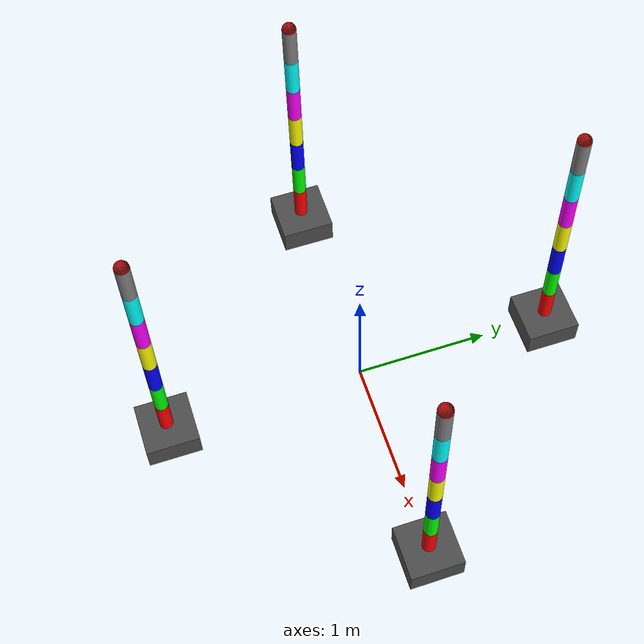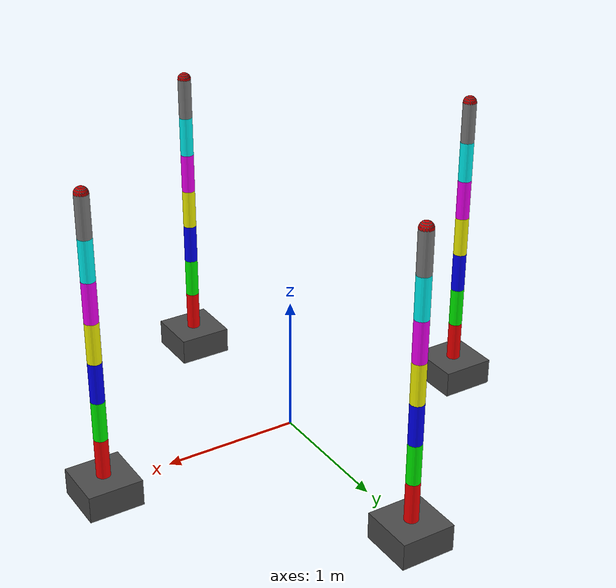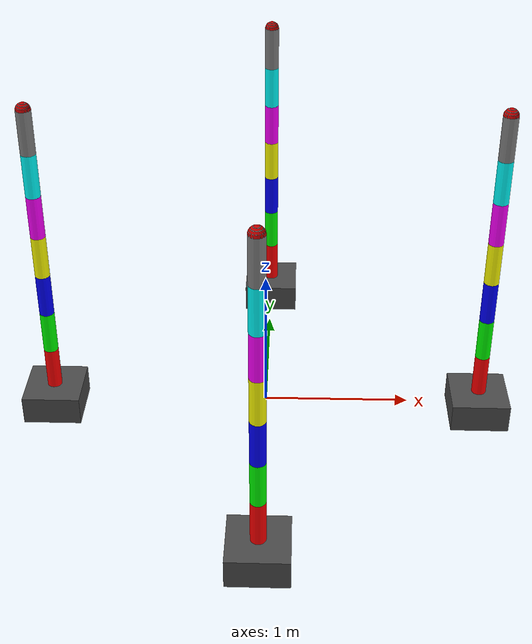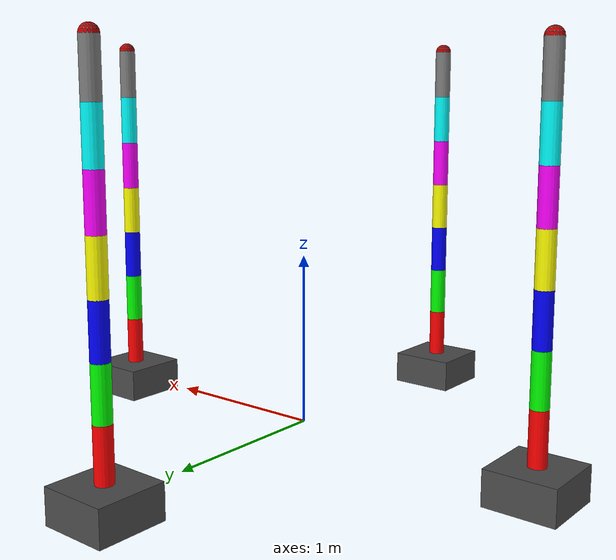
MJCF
<mujoco model="four_franka_pandas">
    <option timestep="0.001" integrator="RK4" gravity="0 0 0"/>

    <default>
        <joint damping="0.01" stiffness="0" limited="true"/>
        <geom rgba="0.8 0.6 0.4 1" condim="4" friction="1 0.5 0.5"/>
    </default>

    <worldbody>
        <!-- Base for first arm (Front) -->
        <body name="base1" pos="1.5 0 0" euler="0 0 180">
            <geom type="box" size="0.2 0.2 0.1" rgba="0.3 0.3 0.3 1"/>
            <!-- First Arm -->
            <body name="link1_1" pos="0 0 0.1">
                <joint name="joint1_1" type="hinge" axis="0 0 1" range="-180 180"/>
                <geom type="capsule" fromto="0 0 0 0 0 0.3" size="0.05" rgba="1 0 0 1"/>
                <body name="link1_2" pos="0 0 0.3">
                    <joint name="joint1_2" type="hinge" axis="0 1 0" range="-90 90"/>
                    <geom type="capsule" fromto="0 0 0 0 0 0.3" size="0.05" rgba="0 1 0 1"/>
                    <body name="link1_3" pos="0 0 0.3">
                        <joint name="joint1_3" type="hinge" axis="0 0 1" range="-180 180"/>
                        <geom type="capsule" fromto="0 0 0 0 0 0.3" size="0.05" rgba="0 0 1 1"/>
                        <body name="link1_4" pos="0 0 0.3">
                            <joint name="joint1_4" type="hinge" axis="0 1 0" range="-90 90"/>
                            <geom type="capsule" fromto="0 0 0 0 0 0.3" size="0.05" rgba="1 1 0 1"/>
                            <body name="link1_5" pos="0 0 0.3">
                                <joint name="joint1_5" type="hinge" axis="0 0 1" range="-180 180"/>
                                <geom type="capsule" fromto="0 0 0 0 0 0.3" size="0.05" rgba="1 0 1 1"/>
                                <body name="link1_6" pos="0 0 0.3">
                                    <joint name="joint1_6" type="hinge" axis="0 1 0" range="-90 90"/>
                                    <geom type="capsule" fromto="0 0 0 0 0 0.3" size="0.05" rgba="0 1 1 1"/>
                                    <body name="link1_7" pos="0 0 0.3">
                                        <joint name="joint1_7" type="hinge" axis="0 0 1" range="-180 180"/>
                                        <geom type="capsule" fromto="0 0 0 0 0 0.3" size="0.05" rgba="0.5 0.5 0.5 1"/>
                                        <body name="end_effector1" pos="0 0 0.3">
                                            <geom type="sphere" size="0.05" rgba="0.8 0 0 1"/>
                                        </body>
                                    </body>
                                </body>
                            </body>
                        </body>
                    </body>
                </body>
            </body>
        </body>

        <!-- Base for second arm (Right) -->
        <body name="base2" pos="0 1.5 0" euler="0 0 -90">
            <geom type="box" size="0.2 0.2 0.1" rgba="0.3 0.3 0.3 1"/>
            <!-- First Arm -->
            <body name="link2_1" pos="0 0 0.1">
                <joint name="joint2_1" type="hinge" axis="0 0 1" range="-180 180"/>
                <geom type="capsule" fromto="0 0 0 0 0 0.3" size="0.05" rgba="1 0 0 1"/>
                <body name="link2_2" pos="0 0 0.3">
                    <joint name="joint2_2" type="hinge" axis="0 1 0" range="-90 90"/>
                    <geom type="capsule" fromto="0 0 0 0 0 0.3" size="0.05" rgba="0 1 0 1"/>
                    <body name="link2_3" pos="0 0 0.3">
                        <joint name="joint2_3" type="hinge" axis="0 0 1" range="-180 180"/>
                        <geom type="capsule" fromto="0 0 0 0 0 0.3" size="0.05" rgba="0 0 1 1"/>
                        <body name="link2_4" pos="0 0 0.3">
                            <joint name="joint2_4" type="hinge" axis="0 1 0" range="-90 90"/>
                            <geom type="capsule" fromto="0 0 0 0 0 0.3" size="0.05" rgba="1 1 0 1"/>
                            <body name="link2_5" pos="0 0 0.3">
                                <joint name="joint2_5" type="hinge" axis="0 0 1" range="-180 180"/>
                                <geom type="capsule" fromto="0 0 0 0 0 0.3" size="0.05" rgba="1 0 1 1"/>
                                <body name="link2_6" pos="0 0 0.3">
                                    <joint name="joint2_6" type="hinge" axis="0 1 0" range="-90 90"/>
                                    <geom type="capsule" fromto="0 0 0 0 0 0.3" size="0.05" rgba="0 1 1 1"/>
                                    <body name="link2_7" pos="0 0 0.3">
                                        <joint name="joint2_7" type="hinge" axis="0 0 1" range="-180 180"/>
                                        <geom type="capsule" fromto="0 0 0 0 0 0.3" size="0.05" rgba="0.5 0.5 0.5 1"/>
                                        <body name="end_effector2" pos="0 0 0.3">
                                            <geom type="sphere" size="0.05" rgba="0.8 0 0 1"/>
                                        </body>
                                    </body>
                                </body>
                            </body>
                        </body>
                    </body>
                </body>
            </body>
        </body>

         <body name="base3" pos="-1.5 0 0" euler="0 0 0">
            <geom type="box" size="0.2 0.2 0.1" rgba="0.3 0.3 0.3 1"/>
            <!-- First Arm -->
            <body name="link3_1" pos="0 0 0.1">
                <joint name="joint3_1" type="hinge" axis="0 0 1" range="-180 180"/>
                <geom type="capsule" fromto="0 0 0 0 0 0.3" size="0.05" rgba="1 0 0 1"/>
                <body name="link3_2" pos="0 0 0.3">
                    <joint name="joint3_2" type="hinge" axis="0 1 0" range="-90 90"/>
                    <geom type="capsule" fromto="0 0 0 0 0 0.3" size="0.05" rgba="0 1 0 1"/>
                    <body name="link3_3" pos="0 0 0.3">
                        <joint name="joint3_3" type="hinge" axis="0 0 1" range="-180 180"/>
                        <geom type="capsule" fromto="0 0 0 0 0 0.3" size="0.05" rgba="0 0 1 1"/>
                        <body name="link3_4" pos="0 0 0.3">
                            <joint name="joint3_4" type="hinge" axis="0 1 0" range="-90 90"/>
                            <geom type="capsule" fromto="0 0 0 0 0 0.3" size="0.05" rgba="1 1 0 1"/>
                            <body name="link3_5" pos="0 0 0.3">
                                <joint name="joint3_5" type="hinge" axis="0 0 1" range="-180 180"/>
                                <geom type="capsule" fromto="0 0 0 0 0 0.3" size="0.05" rgba="1 0 1 1"/>
                                <body name="link3_6" pos="0 0 0.3">
                                    <joint name="joint3_6" type="hinge" axis="0 1 0" range="-90 90"/>
                                    <geom type="capsule" fromto="0 0 0 0 0 0.3" size="0.05" rgba="0 1 1 1"/>
                                    <body name="link3_7" pos="0 0 0.3">
                                        <joint name="joint3_7" type="hinge" axis="0 0 1" range="-180 180"/>
                                        <geom type="capsule" fromto="0 0 0 0 0 0.3" size="0.05" rgba="0.5 0.5 0.5 1"/>
                                        <body name="end_effector3" pos="0 0 0.3">
                                            <geom type="sphere" size="0.05" rgba="0.8 0 0 1"/>
                                        </body>
                                    </body>
                                </body>
                            </body>
                        </body>
                    </body>
                </body>
            </body>
        </body>

         <body name="base4" pos="0 -1.5 0" euler="0 0 90">
            <geom type="box" size="0.2 0.2 0.1" rgba="0.3 0.3 0.3 1"/>
            <!-- First Arm -->
            <body name="link4_1" pos="0 0 0.1">
                <joint name="joint4_1" type="hinge" axis="0 0 1" range="-180 180"/>
                <geom type="capsule" fromto="0 0 0 0 0 0.3" size="0.05" rgba="1 0 0 1"/>
                <body name="link4_2" pos="0 0 0.3">
                    <joint name="joint4_2" type="hinge" axis="0 1 0" range="-90 90"/>
                    <geom type="capsule" fromto="0 0 0 0 0 0.3" size="0.05" rgba="0 1 0 1"/>
                    <body name="link4_3" pos="0 0 0.3">
                        <joint name="joint4_3" type="hinge" axis="0 0 1" range="-180 180"/>
                        <geom type="capsule" fromto="0 0 0 0 0 0.3" size="0.05" rgba="0 0 1 1"/>
                        <body name="link4_4" pos="0 0 0.3">
                            <joint name="joint4_4" type="hinge" axis="0 1 0" range="-90 90"/>
                            <geom type="capsule" fromto="0 0 0 0 0 0.3" size="0.05" rgba="1 1 0 1"/>
                            <body name="link4_5" pos="0 0 0.3">
                                <joint name="joint4_5" type="hinge" axis="0 0 1" range="-180 180"/>
                                <geom type="capsule" fromto="0 0 0 0 0 0.3" size="0.05" rgba="1 0 1 1"/>
                                <body name="link4_6" pos="0 0 0.3">
                                    <joint name="joint4_6" type="hinge" axis="0 1 0" range="-90 90"/>
                                    <geom type="capsule" fromto="0 0 0 0 0 0.3" size="0.05" rgba="0 1 1 1"/>
                                    <body name="link4_7" pos="0 0 0.3">
                                        <joint name="joint4_7" type="hinge" axis="0 0 1" range="-180 180"/>
                                        <geom type="capsule" fromto="0 0 0 0 0 0.3" size="0.05" rgba="0.5 0.5 0.5 1"/>
                                        <body name="end_effector4" pos="0 0 0.3">
                                            <geom type="sphere" size="0.05" rgba="0.8 0 0 1"/>
                                        </body>
                                    </body>
                                </body>
                            </body>
                        </body>
                    </body>
                </body>
            </body>
        </body>

        <!-- Repeat similarly for third and fourth arms -->
    </worldbody>

    <actuator>
        <!-- Add actuators for all arms -->
        <motor name="motor1_1" joint="joint1_1" ctrlrange="-1 1" ctrllimited="true" gear="1"/>
        <motor name="motor1_2" joint="joint1_2" ctrlrange="-1 1" ctrllimited="true" gear="1"/>
        <motor name="motor1_3" joint="joint1_3" ctrlrange="-1 1" ctrllimited="true" gear="1"/>
        <motor name="motor1_4" joint="joint1_4" ctrlrange="-1 1" ctrllimited="true" gear="1"/>
        <motor name="motor1_5" joint="joint1_5" ctrlrange="-1 1" ctrllimited="true" gear="1"/>
        <motor name="motor1_6" joint="joint1_6" ctrlrange="-1 1" ctrllimited="true" gear="1"/>
        <motor name="motor1_7" joint="joint1_7" ctrlrange="-1 1" ctrllimited="true" gear="1"/>
        <motor name="motor2_1" joint="joint2_1" ctrlrange="-1 1" ctrllimited="true" gear="1"/>
        <motor name="motor2_2" joint="joint2_2" ctrlrange="-1 1" ctrllimited="true" gear="1"/>
        <motor name="motor2_3" joint="joint2_3" ctrlrange="-1 1" ctrllimited="true" gear="1"/>
        <motor name="motor2_4" joint="joint2_4" ctrlrange="-1 1" ctrllimited="true" gear="1"/>
        <motor name="motor2_5" joint="joint2_5" ctrlrange="-1 1" ctrllimited="true" gear="1"/>
        <motor name="motor2_6" joint="joint2_6" ctrlrange="-1 1" ctrllimited="true" gear="1"/>
        <motor name="motor2_7" joint="joint2_7" ctrlrange="-1 1" ctrllimited="true" gear="1"/>
        <motor name="motor3_1" joint="joint3_1" ctrlrange="-1 1" ctrllimited="true" gear="1"/>
        <motor name="motor3_2" joint="joint3_2" ctrlrange="-1 1" ctrllimited="true" gear="1"/>
        <motor name="motor3_3" joint="joint3_3" ctrlrange="-1 1" ctrllimited="true" gear="1"/>
        <motor name="motor3_4" joint="joint3_4" ctrlrange="-1 1" ctrllimited="true" gear="1"/>
        <motor name="motor3_5" joint="joint3_5" ctrlrange="-1 1" ctrllimited="true" gear="1"/>
        <motor name="motor3_6" joint="joint3_6" ctrlrange="-1 1" ctrllimited="true" gear="1"/>
        <motor name="motor3_7" joint="joint3_7" ctrlrange="-1 1" ctrllimited="true" gear="1"/>
        <motor name="motor4_1" joint="joint4_1" ctrlrange="-1 1" ctrllimited="true" gear="1"/>
        <motor name="motor4_2" joint="joint4_2" ctrlrange="-1 1" ctrllimited="true" gear="1"/>
        <motor name="motor4_3" joint="joint4_3" ctrlrange="-1 1" ctrllimited="true" gear="1"/>
        <motor name="motor4_4" joint="joint4_4" ctrlrange="-1 1" ctrllimited="true" gear="1"/>
        <motor name="motor4_5" joint="joint4_5" ctrlrange="-1 1" ctrllimited="true" gear="1"/>
        <motor name="motor4_6" joint="joint4_6" ctrlrange="-1 1" ctrllimited="true" gear="1"/>
        <motor name="motor4_7" joint="joint4_7" ctrlrange="-1 1" ctrllimited="true" gear="1"/>

        <!-- Add the rest for each joint -->
    </actuator>

    <sensor>
        <jointpos joint="joint1_1"/>
        <jointpos joint="joint1_2"/>
        <jointpos joint="joint1_3"/>
        <jointpos joint="joint1_4"/>
        <jointpos joint="joint1_5"/>
        <jointpos joint="joint1_6"/>
        <jointpos joint="joint1_7"/>
        <jointvel joint="joint1_1"/>
        <jointvel joint="joint1_2"/>
        <jointvel joint="joint1_3"/>
        <jointvel joint="joint1_4"/>
        <jointvel joint="joint1_5"/>
        <jointvel joint="joint1_6"/>
        <jointvel joint="joint1_7"/>
        <jointpos joint="joint2_1"/>
        <jointpos joint="joint2_2"/>
        <jointpos joint="joint2_3"/>
        <jointpos joint="joint2_4"/>
        <jointpos joint="joint2_5"/>
        <jointpos joint="joint2_6"/>
        <jointpos joint="joint2_7"/>
        <jointvel joint="joint2_1"/>
        <jointvel joint="joint2_2"/>
        <jointvel joint="joint2_3"/>
        <jointvel joint="joint2_4"/>
        <jointvel joint="joint2_5"/>
        <jointvel joint="joint2_6"/>
        <jointvel joint="joint2_7"/>
        <jointpos joint="joint3_1"/>
        <jointpos joint="joint3_2"/>
        <jointpos joint="joint3_3"/>
        <jointpos joint="joint3_4"/>
        <jointpos joint="joint3_5"/>
        <jointpos joint="joint3_6"/>
        <jointpos joint="joint3_7"/>
        <jointvel joint="joint3_1"/>
        <jointvel joint="joint3_2"/>
        <jointvel joint="joint3_3"/>
        <jointvel joint="joint3_4"/>
        <jointvel joint="joint3_5"/>
        <jointvel joint="joint3_6"/>
        <jointvel joint="joint3_7"/>
        <jointpos joint="joint4_1"/>
        <jointpos joint="joint4_2"/>
        <jointpos joint="joint4_3"/>
        <jointpos joint="joint4_4"/>
        <jointpos joint="joint4_5"/>
        <jointpos joint="joint4_6"/>
        <jointpos joint="joint4_7"/>
        <jointvel joint="joint4_1"/>
        <jointvel joint="joint4_2"/>
        <jointvel joint="joint4_3"/>
        <jointvel joint="joint4_4"/>
        <jointvel joint="joint4_5"/>
        <jointvel joint="joint4_6"/>
        <jointvel joint="joint4_7"/>

    </sensor>
</mujoco>
